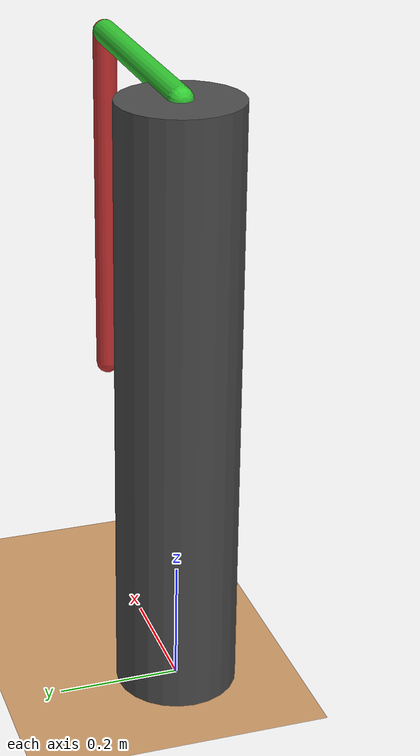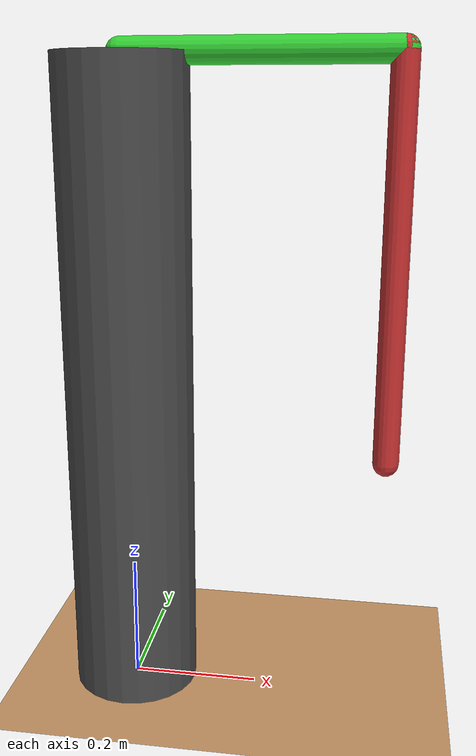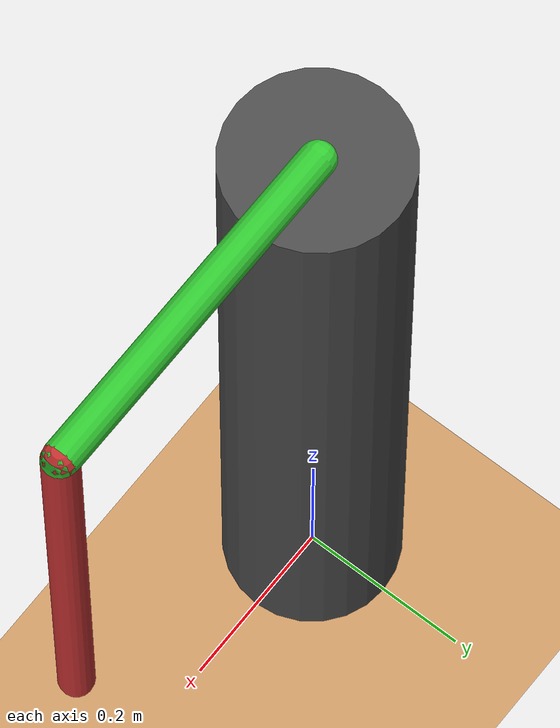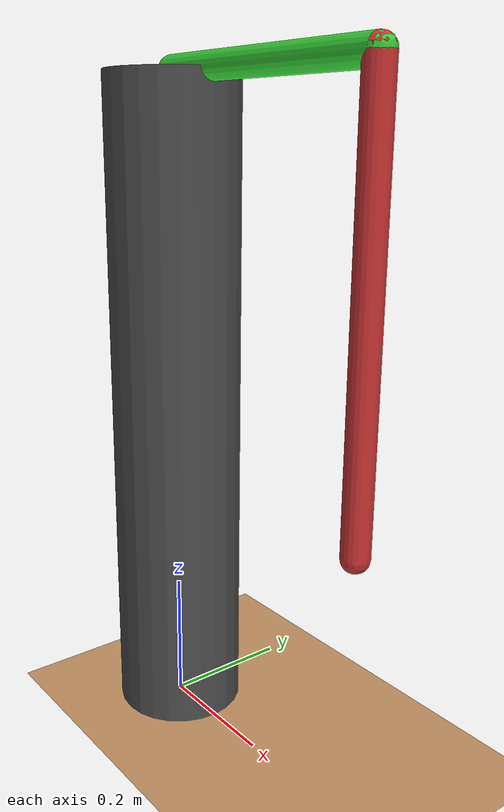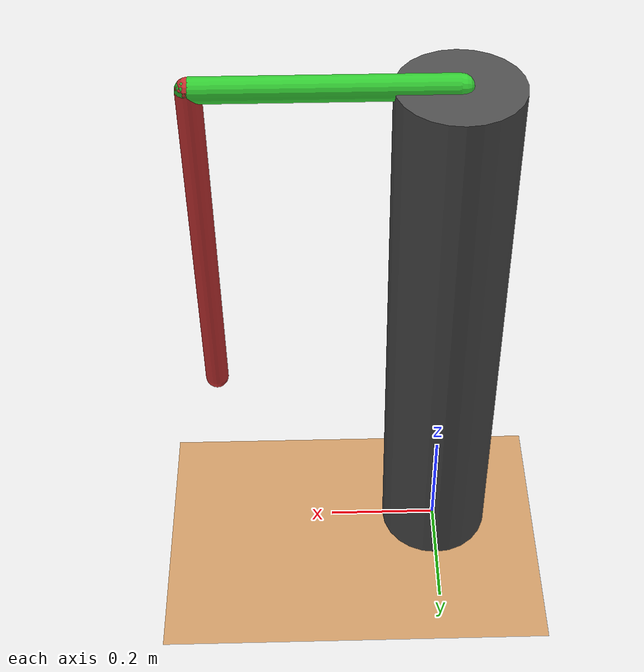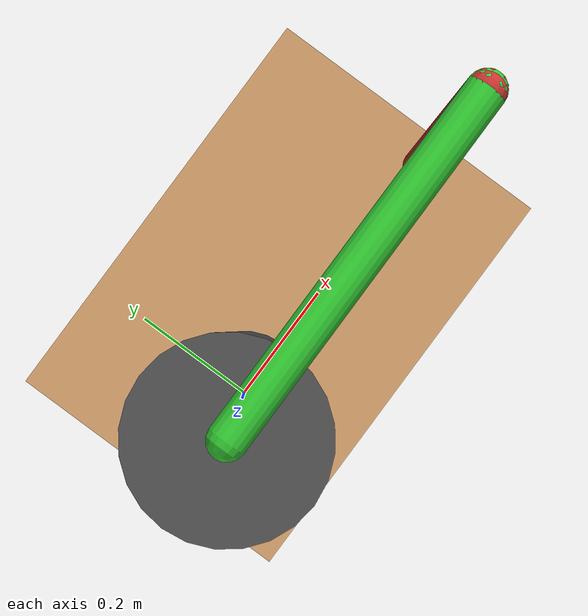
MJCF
<mujoco model="furuta_pendulum">
    <compiler inertiafromgeom="true" angle="radian" coordinate="local"/>
    <option timestep="0.01" gravity="0 0 -9.81" integrator="RK4"/>

    <default>
        <joint armature="0.005" damping="0.02" limited="false"/>
        <geom contype="0" conaffinity="0" friction="1 0.5 0.5" rgba="0.8 0.6 0.4 1" margin="0.01"/>
        <!-- Weaken the motor drastically so it HAS to pump the pendulum to swing it up -->
        <motor ctrlrange="-1.5 1.5" ctrllimited="true"/>
    </default>

    <asset>
        <texture type="skybox" builtin="gradient" rgb1="0.4 0.6 0.8" rgb2="0 0 0" width="512" height="512"/>
        <texture name="texplane" type="2d" builtin="checker" rgb1="0.2 0.3 0.4" rgb2="0.1 0.15 0.2" width="512" height="512" mark="cross" markrgb="0.8 0.8 0.8"/>
        <material name="matplane" reflectance="0.3" texture="texplane" texrepeat="1 1" texuniform="true"/>
    </asset>

    <worldbody>
        <light directional="true" diffuse="0.8 0.8 0.8" specular="0.2 0.2 0.2" pos="0 0 5" dir="0 0 -1"/>
        <geom name="floor" type="plane" size="10 10 0.1" material="matplane" contype="1" conaffinity="1"/>

        <!-- ADJUST CAMERA ANGLE HERE -->
        <!-- Moved camera back and slightly up for a better isometric view -->
        <camera name="track" pos="0 -2.5 2.0" zaxis="0 -1 0.8" mode="trackcom"/>

        <!-- The fixed base -->
        <body name="base" pos="0 0 0.5">
            <geom name="base_geom" type="cylinder" size="0.1 0.5" rgba="0.3 0.3 0.3 1" contype="1" conaffinity="1"/>

            <!-- The horizontal rotary arm -->
            <body name="rotary_arm" pos="0 0 0.5">
                <!-- Motorized joint (Z-axis rotation) -->
                <joint name="rotary_joint" type="hinge" axis="0 0 1" damping="0.05"/>

                <!-- The arm extending outwards -->
                <geom name="arm_geom" type="capsule" fromto="0 0 0 0.4 0 0" size="0.02" rgba="0.2 0.8 0.2 1" mass="0.5"/>

                <!-- The loose pendulum attached to the end of the rotary arm -->
                <body name="pendulum" pos="0.4 0 0">
                    <!-- Loose joint (Y-axis rotation). No motor here! -->
                    <!-- Reduced damping to make it swing more wildly -->
                    <joint name="pendulum_joint" type="hinge" axis="0 1 0" damping="0.001"/>

                    <!-- The pendulum pole (starts pointing DOWN) -->
                    <!-- Made the pendulum longer and heavier -->
                    <geom name="pendulum_geom" type="capsule" fromto="0 0 0 0 0 -0.6" size="0.02" rgba="0.8 0.2 0.2 1" mass="0.8"/>
                </body>
            </body>
        </body>
    </worldbody>

    <actuator>
        <!-- Actuate ONLY the horizontal rotary arm's joint -->
        <motor name="rotary_motor" joint="rotary_joint" gear="10"/>
    </actuator>
</mujoco>
